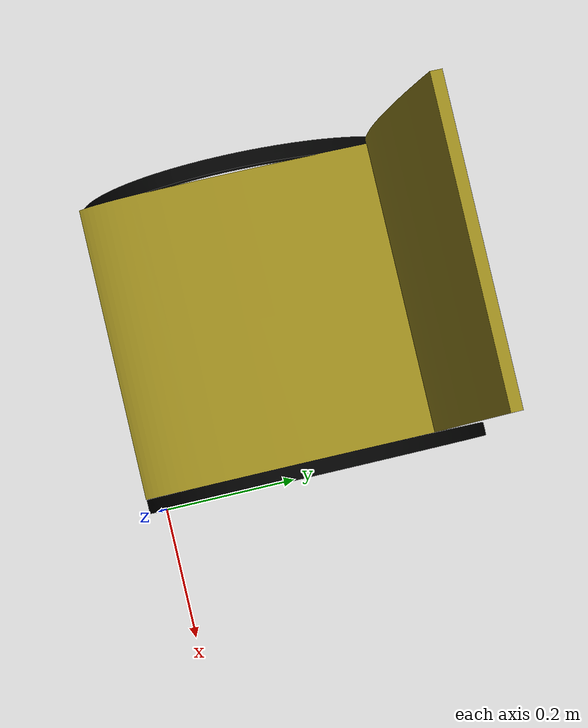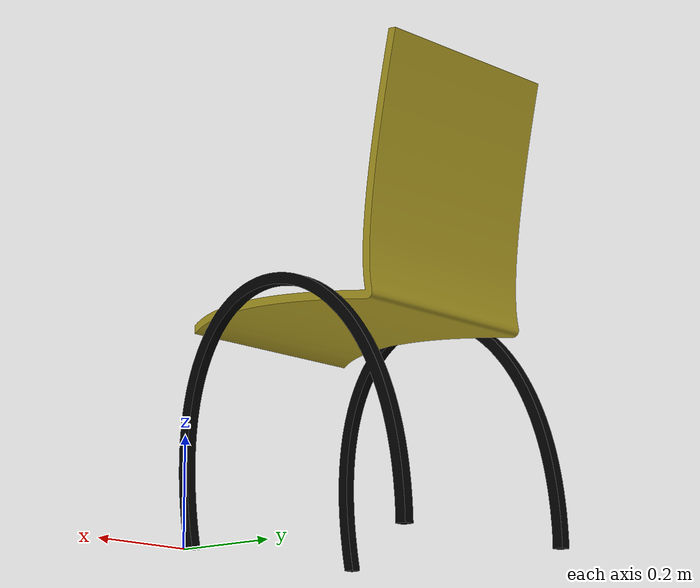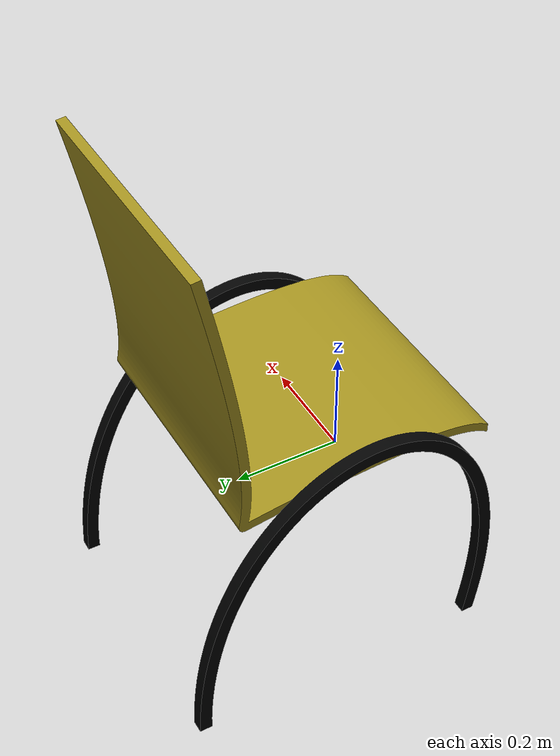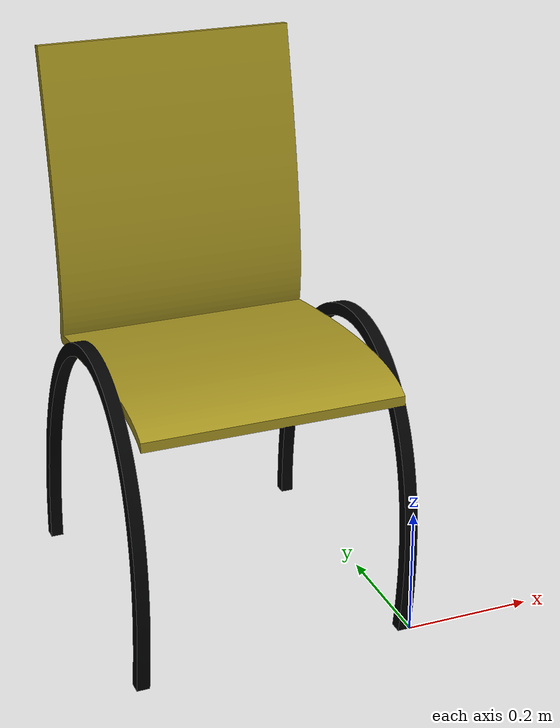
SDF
<?xml version="1.0" ?>
<sdf version="1.5">
  <model name="krzeslo">
    <static>true</static>
    <link name="link">
      <collision name="collision">
        <geometry>
          <mesh>
            <uri>model://krzeslo/meshes/Krzeslo.dae</uri>
          </mesh>
        </geometry>
      </collision>
      <visual name="visual">
        <geometry>
          <mesh>
            <uri>model://krzeslo/meshes/Krzeslo.dae</uri>
          </mesh>
        </geometry>
      </visual>
    </link>
  </model>
</sdf>
